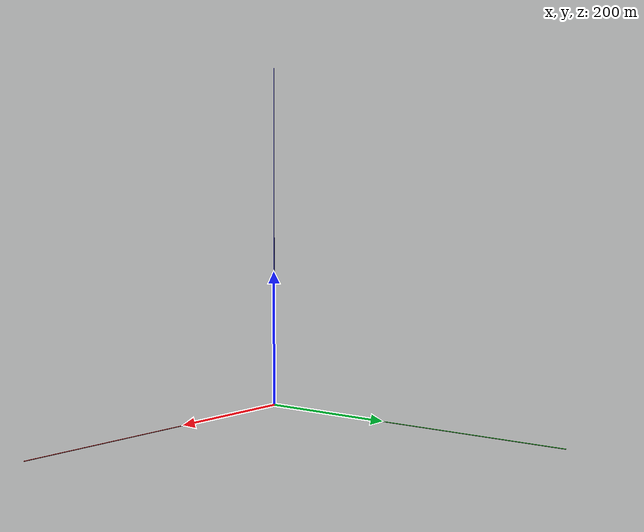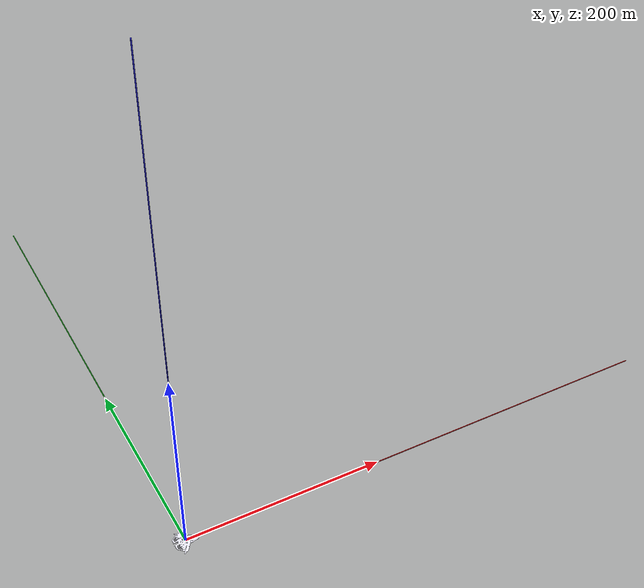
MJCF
<mujoco model="environment">
  <compiler meshdir="." angle="radian" coordinate="local"/>
  <option gravity="0 0 0" timestep="0.004"/>

  <asset>
    <mesh name="spacecraft_mesh" file="F8_lightning.stl" scale="1 1 1"/>
    <material name="ship_mat" rgba="0.9 0.9 0.95 1"/>
  </asset>

  <worldbody>
    <body name="world_axes" pos="0 0 0">
      <geom name="axis_x" type="capsule" fromto="0 0 0  500 0 0" size="0.5" rgba="1 0.2 0.2 1"/>
      <geom name="axis_y" type="capsule" fromto="0 0 0  0 500 0" size="0.5" rgba="0.2 1 0.2 1"/>
      <geom name="axis_z" type="capsule" fromto="0 0 0  0 0 500" size="0.5" rgba="0.2 0.2 1 1"/>
    </body>

    <body name="spacecraft" pos="0 0 0" euler="0 0 0">
      <inertial
        pos="0 0 0"
        mass="153775"
        fullinertia="2.36938373e6 1.52043941e6 3.70858993e6 0 2.79684673e2 0"/>
      <!-- Calculated "2.36938373e+06 1.52043941e+06 3.70858993e+06 -3.68491638e+03 2.79684673e+02 9.80345726e+04" -->
      <joint
        name="spacecraft_joint"
        type="free"/>
      <geom
        type="mesh"
        mesh="spacecraft_mesh"
        material="ship_mat"
        pos="-1.64993 0.01318 -0.06021"
        quat="0.7071 0 0 -0.7071"
        contype="0"
        conaffinity="0"/>
       <site name="virtual_thruster" pos="0 0 0" euler="0 0 0" size="0.02" rgba="0 1 0 1"/>
       <camera name="chase_onbody" mode="fixed" pos="-200 0 60" euler="0 0 0"/>
    </body>
  </worldbody>

  <actuator>
    <general name="Fx" biastype="none" site="virtual_thruster" gear="1 0 0 0 0 0" ctrlrange="-2.0e+07 2.0e+07"/>
    <general name="Fy" biastype="none" site="virtual_thruster" gear="0 1 0 0 0 0" ctrlrange="-2.0e+07 2.0e+07"/>
    <general name="Fz" biastype="none" site="virtual_thruster" gear="0 0 1 0 0 0" ctrlrange="-2.0e+07 2.0e+07"/>
    <general name="Mx" biastype="none" site="virtual_thruster" gear="0 0 0 1 0 0" ctrlrange="-5.0e+06 5.0e+06"/>
    <general name="My" biastype="none" site="virtual_thruster" gear="0 0 0 0 1 0" ctrlrange="-5.0e+06 5.0e+06"/>
    <general name="Mz" biastype="none" site="virtual_thruster" gear="0 0 0 0 0 1" ctrlrange="-5.0e+06 5.0e+06"/>
  </actuator>
</mujoco>
